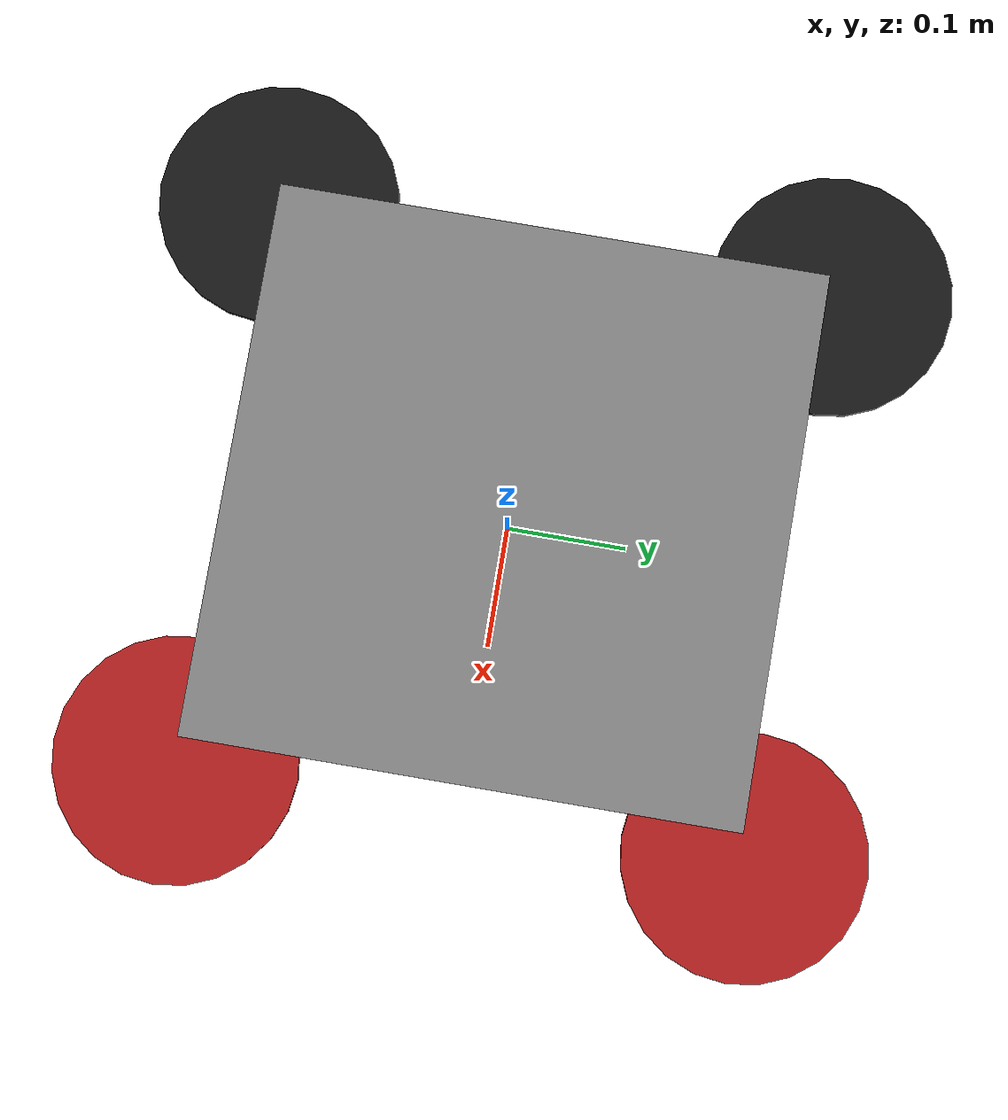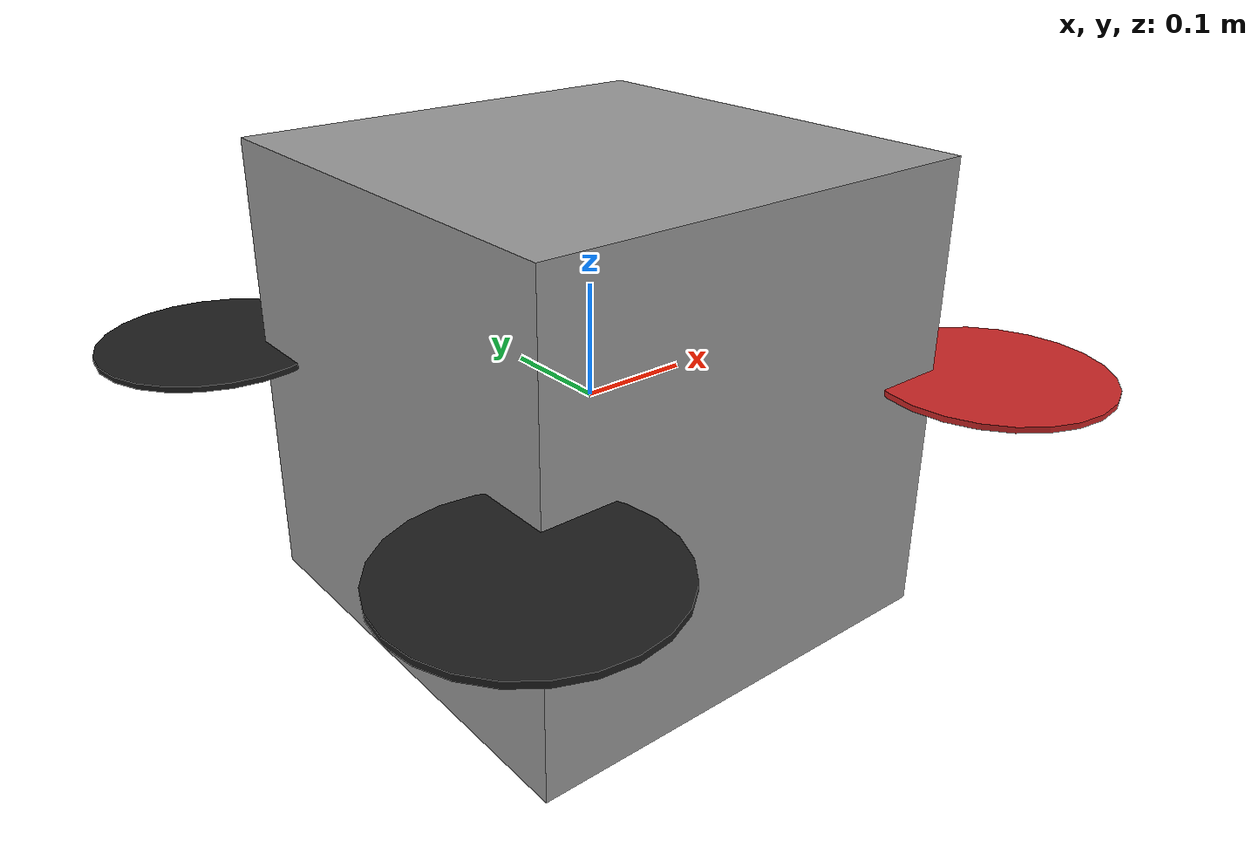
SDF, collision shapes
<?xml version="1.0"?>

<sdf version='1.7'>
  <model name='dji'>
  <static>false</static>

    <link name='base_link'>
      <pose>0 0 0 0 0 0</pose>
      <inertial>
        <pose>0 0 0 0 0 0</pose>
        <mass>1.5</mass>
        <inertia>
          <ixx>0.00162</ixx>
          <ixy>0</ixy>
          <ixz>0</ixz>
          <iyy>0.00162</iyy>
          <iyz>0</iyz>
          <izz>0.0010125</izz>
        </inertia>
      </inertial>
      <collision name='base_link_inertia_collision'>
        <pose>0 0 0.014 0 0 0</pose>
        <geometry>
          <box>
            <size>0.4 0.4 0.4</size>
          </box>
        </geometry>
      </collision>
      <visual name='base_link_inertia_visual'>
        <pose>0 0 0 1.5707 0 1.5707</pose>
        <geometry>
          <mesh>
            <scale>1 1 1</scale>
            <uri>model://dji/meshes//m100.dae</uri>
          </mesh>
        </geometry>
        <material>
            <script>
              <uri>file://media/materials/scripts/gazebo.material</uri>
              <name>Gazebo/Grey</name>
            </script>
            <ambient>0.5 0.5 0.5 0.9</ambient>
        </material>
      </visual>
      <sensor name="os1_sensor" type="gpu_lidar">
        <topic>dji/os1_cloud_node</topic>
        <pose>0 0 0.0944 0 0 0</pose>
        <update_rate>20</update_rate>
        <lidar>
          <scan>
            <horizontal>
              <samples>1024</samples>
              <resolution>1</resolution>
              <min_angle>-3.14159</min_angle>
              <max_angle>3.14159</max_angle>
            </horizontal>
            <vertical>
              <samples>64</samples>
              <resolution>1</resolution>
              <min_angle>-0.785398163397</min_angle>
              <max_angle>0.785398163397</max_angle>
            </vertical>
          </scan>
          <range>
            <min>0.1</min>
            <max>50</max>
            <resolution>0.003</resolution>
          </range>
          <noise>
              <type>gaussian</type>
              <mean>0</mean>
              <stddev>0.03</stddev>
          </noise>
        </lidar>
      </sensor>
      <visual name='base_link_os1'>
        <pose>0 0 0.06 0 -0 1.5708</pose>
        <geometry>
          <mesh>
            <scale>1 1 1</scale>
            <uri>meshes/os1_64.dae</uri>
          </mesh>
        </geometry>
      </visual>
    </link>

    <link name='imu_link'>
      <pose>0 0 0 0 0 0</pose>
      <inertial>
        <pose>0 0 0 0 0 0</pose>
        <mass>0.015</mass>
        <inertia>
          <ixx>1e-05</ixx>
          <ixy>0</ixy>
          <ixz>0</ixz>
          <iyy>1e-05</iyy>
          <iyz>0</iyz>
          <izz>1e-05</izz>
        </inertia>
      </inertial>
      <sensor name="imu_sensor" type="imu">
          <topic>dji/imu</topic>
          <always_on>1</always_on>
          <update_rate>250</update_rate>
              <imu>
                  <enable_orientation>0</enable_orientation>
                  <angular_velocity>
                      <x>
                          <noise type="gaussian">
                              <mean>0</mean>
                              <stddev>0.009</stddev>
                              <bias_mean>0.00075</bias_mean>
                              <bias_stddev>0.005</bias_stddev>
                              <dynamic_bias_stddev>0.00002</dynamic_bias_stddev>
                              <dynamic_bias_correlation_time>400.0</dynamic_bias_correlation_time>
                              <precision>0.00025</precision>
                          </noise>
                      </x>
                      <y>
                          <noise type="gaussian">
                              <mean>0</mean>
                              <stddev>0.009</stddev>
                              <bias_mean>0.00075</bias_mean>
                              <bias_stddev>0.005</bias_stddev>
                              <dynamic_bias_stddev>0.00002</dynamic_bias_stddev>
                              <dynamic_bias_correlation_time>400.0</dynamic_bias_correlation_time>
                              <precision>0.00025</precision>
                          </noise>
                      </y>
                      <z>
                          <noise type="gaussian">
                              <mean>0</mean>
                              <stddev>0.009</stddev>
                              <bias_mean>0.00075</bias_mean>
                              <bias_stddev>0.005</bias_stddev>
                              <dynamic_bias_stddev>0.00002</dynamic_bias_stddev>
                              <dynamic_bias_correlation_time>400.0</dynamic_bias_correlation_time>
                              <precision>0.00025</precision>
                          </noise>
                      </z>
                  </angular_velocity>
                  <linear_acceleration>
                      <x>
                          <noise type="gaussian">
                              <mean>0</mean>
                              <stddev>0.021</stddev>
                              <bias_mean>0.05</bias_mean>
                              <bias_stddev>0.0075</bias_stddev>
                              <dynamic_bias_stddev>0.000375</dynamic_bias_stddev>
                              <dynamic_bias_correlation_time>175.0</dynamic_bias_correlation_time>
                              <precision>0.005</precision>
                          </noise>
                      </x>
                      <y>
                          <noise type="gaussian">
                              <mean>0</mean>
                              <stddev>0.021</stddev>
                              <bias_mean>0.05</bias_mean>
                              <bias_stddev>0.0075</bias_stddev>
                              <dynamic_bias_stddev>0.000375</dynamic_bias_stddev>
                              <dynamic_bias_correlation_time>175.0</dynamic_bias_correlation_time>
                              <precision>0.005</precision>
                          </noise>
                      </y>
                      <z>
                          <noise type="gaussian">
                              <mean>0</mean>
                              <stddev>0.021</stddev>
                              <bias_mean>0.05</bias_mean>
                              <bias_stddev>0.0075</bias_stddev>
                              <dynamic_bias_stddev>0.000375</dynamic_bias_stddev>
                              <dynamic_bias_correlation_time>175.0</dynamic_bias_correlation_time>
                              <precision>0.005</precision>
                          </noise>
                      </z>
                  </linear_acceleration>
              </imu>
      </sensor>
    </link>

    <joint name='imu_joint' type='revolute'>
      <child>imu_link</child>
      <parent>base_link</parent>
      <axis>
        <xyz>1 0 0</xyz>
        <limit>
          <lower>0</lower>
          <upper>0</upper>
          <effort>0</effort>
          <velocity>0</velocity>
        </limit>
        <dynamics>
          <spring_reference>0</spring_reference>
          <spring_stiffness>0</spring_stiffness>
        </dynamics>
        <use_parent_model_frame>1</use_parent_model_frame>
      </axis>
    </joint>

    <link name='rotor_0'>
      <pose>0.232 -0.232 0.034 0 0 0</pose>
      <inertial>
        <pose>0 0 0 0 0 0</pose>
        <mass>0.005</mass>
        <inertia>
          <ixx>9.75e-07</ixx>
          <ixy>0</ixy>
          <ixz>0</ixz>
          <iyy>4.17041e-05</iyy>
          <iyz>0</iyz>
          <izz>4.26041e-05</izz>
        </inertia>
      </inertial>
      <collision name='rotor_0_collision'>
        <pose>0 0 0 0 0 0</pose>
        <geometry>
          <cylinder>
            <length>0.005</length>
            <radius>0.1</radius>
          </cylinder>
        </geometry>
        <surface>
          <contact>
            <ode/>
          </contact>
          <friction>
            <ode/>
          </friction>
        </surface>
      </collision>
      <visual name='rotor_0_visual'>
        <pose>0 0 0 0 0 0</pose>
        <geometry>
          <mesh>
            <scale>0.1 0.1 0.1</scale>
            <uri>model://dji/meshes/propeller_ccw.dae</uri>
          </mesh>
        </geometry>
        <material>
          <script>
            <name>Gazebo/Red</name>
            <uri>file://media/materials/scripts/gazebo.material</uri>
          </script>
        </material>
      </visual>
      <gravity>1</gravity>
      <velocity_decay/>
    </link>

    <joint name='rotor_0_joint' type='revolute'>
      <child>rotor_0</child>
      <parent>base_link</parent>
      <axis>
        <xyz>0 0 1</xyz>
        <limit>
          <lower>-1e+16</lower>
          <upper>1e+16</upper>
        </limit>
        <dynamics>
          <spring_reference>0</spring_reference>
          <spring_stiffness>0</spring_stiffness>
        </dynamics>
        <use_parent_model_frame>1</use_parent_model_frame>
      </axis>
    </joint>

    <link name='rotor_1'>
      <pose>-0.232 0.232 0.034 0 0 0</pose>
      <inertial>
        <pose>0 0 0 0 0 0</pose>
        <mass>0.005</mass>
        <inertia>
          <ixx>9.75e-07</ixx>
          <ixy>0</ixy>
          <ixz>0</ixz>
          <iyy>4.17041e-05</iyy>
          <iyz>0</iyz>
          <izz>4.26041e-05</izz>
        </inertia>
      </inertial>
      <collision name='rotor_1_collision'>
        <pose>0 0 0 0 0 0</pose>
        <geometry>
          <cylinder>
            <length>0.005</length>
            <radius>0.1</radius>
          </cylinder>
        </geometry>
        <surface>
          <contact>
            <ode/>
          </contact>
          <friction>
            <ode/>
          </friction>
        </surface>
      </collision>
      <visual name='rotor_1_visual'>
        <pose>0 0 0 0 0 0</pose>
        <geometry>
          <mesh>
            <scale>0.1 0.1 0.1</scale>
            <uri>model://dji/meshes/propeller_ccw.dae</uri>
          </mesh>
        </geometry>
        <material>
          <script>
            <name>Gazebo/Black</name>
            <uri>file://media/materials/scripts/gazebo.material</uri>
          </script>
        </material>
      </visual>
      <gravity>1</gravity>
      <velocity_decay/>
    </link>
    <joint name='rotor_1_joint' type='revolute'>
      <child>rotor_1</child>
      <parent>base_link</parent>
      <axis>
        <xyz>0 0 1</xyz>
        <limit>
          <lower>-1e+16</lower>
          <upper>1e+16</upper>
        </limit>
        <dynamics>
          <spring_reference>0</spring_reference>
          <spring_stiffness>0</spring_stiffness>
        </dynamics>
        <use_parent_model_frame>1</use_parent_model_frame>
      </axis>
    </joint>

    <link name='rotor_2'>
      <pose>0.232 0.232 0.034 0 0 0</pose>
      <inertial>
        <pose>0 0 0 0 0 0</pose>
        <mass>0.005</mass>
        <inertia>
          <ixx>9.75e-07</ixx>
          <ixy>0</ixy>
          <ixz>0</ixz>
          <iyy>4.17041e-05</iyy>
          <iyz>0</iyz>
          <izz>4.26041e-05</izz>
        </inertia>
      </inertial>
      <collision name='rotor_2_collision'>
        <pose>0 0 0 0 0 0</pose>
        <geometry>
          <cylinder>
            <length>0.005</length>
            <radius>0.1</radius>
          </cylinder>
        </geometry>
        <surface>
          <contact>
            <ode/>
          </contact>
          <friction>
            <ode/>
          </friction>
        </surface>
      </collision>
      <visual name='rotor_2_visual'>
        <pose>0 0 0 0 0 0</pose>
        <geometry>
          <mesh>
            <scale>0.1 0.1 0.1</scale>
            <uri>model://dji/meshes/propeller_cw.dae</uri>
          </mesh>
        </geometry>
        <material>
          <script>
            <name>Gazebo/Red</name>
            <uri>file://media/materials/scripts/gazebo.material</uri>
          </script>
        </material>
      </visual>
      <gravity>1</gravity>
      <velocity_decay/>
    </link>
    <joint name='rotor_2_joint' type='revolute'>
      <child>rotor_2</child>
      <parent>base_link</parent>
      <axis>
        <xyz>0 0 1</xyz>
        <limit>
          <lower>-1e+16</lower>
          <upper>1e+16</upper>
        </limit>
        <dynamics>
          <spring_reference>0</spring_reference>
          <spring_stiffness>0</spring_stiffness>
        </dynamics>
        <use_parent_model_frame>1</use_parent_model_frame>
      </axis>
    </joint>

    <link name='rotor_3'>
      <pose>-0.232 -0.232 0.034 0 0 0</pose>
      <inertial>
        <pose>0 0 0 0 0 0</pose>
        <mass>0.005</mass>
        <inertia>
          <ixx>9.75e-07</ixx>
          <ixy>0</ixy>
          <ixz>0</ixz>
          <iyy>4.17041e-05</iyy>
          <iyz>0</iyz>
          <izz>4.26041e-05</izz>
        </inertia>
      </inertial>
      <collision name='rotor_3_collision'>
        <pose>0 0 0 0 0 0</pose>
        <geometry>
          <cylinder>
            <length>0.005</length>
            <radius>0.1</radius>
          </cylinder>
        </geometry>
        <surface>
          <contact>
            <ode/>
          </contact>
          <friction>
            <ode/>
          </friction>
        </surface>
      </collision>
      <visual name='rotor_3_visual'>
        <pose>0 0 0 0 0 0</pose>
        <geometry>
          <mesh>
            <scale>0.1 0.1 0.1</scale>
            <uri>model://dji/meshes/propeller_cw.dae</uri>
          </mesh>
        </geometry>
        <material>
          <script>
            <name>Gazebo/Black</name>
            <uri>file://media/materials/scripts/gazebo.material</uri>
          </script>
        </material>
      </visual>
      <gravity>1</gravity>
      <velocity_decay/>
    </link>
    <joint name='rotor_3_joint' type='revolute'>
      <child>rotor_3</child>
      <parent>base_link</parent>
      <axis>
        <xyz>0 0 1</xyz>
        <limit>
          <lower>-1e+16</lower>
          <upper>1e+16</upper>
        </limit>
        <dynamics>
          <spring_reference>0</spring_reference>
          <spring_stiffness>0</spring_stiffness>
        </dynamics>
        <use_parent_model_frame>1</use_parent_model_frame>
      </axis>
    </joint>

    <!-- Plugin to control differential locomotion-->
  <plugin
        filename="ignition-gazebo-multicopter-motor-model-system"
        name="ignition::gazebo::systems::MulticopterMotorModel">
        <robotNamespace>dji</robotNamespace>
        <jointName>rotor_0_joint</jointName>
        <linkName>rotor_0</linkName>
        <turningDirection>ccw</turningDirection>
        <timeConstantUp>0.0125</timeConstantUp>
        <timeConstantDown>0.025</timeConstantDown>
        <maxRotVelocity>20000.0</maxRotVelocity>
        <motorConstant>8.54858e-06</motorConstant>
        <momentConstant>0.016</momentConstant>
        <commandSubTopic>gazebo/command/motor_speed</commandSubTopic>
        <motorNumber>0</motorNumber>
        <rotorDragCoefficient>8.06428e-05</rotorDragCoefficient>
        <rollingMomentCoefficient>1e-06</rollingMomentCoefficient>
        <motorSpeedPubTopic>motor_speed/0</motorSpeedPubTopic>
        <rotorVelocitySlowdownSim>1</rotorVelocitySlowdownSim>
        <motorType>velocity</motorType>
      </plugin>
      <plugin
        filename="ignition-gazebo-multicopter-motor-model-system"
        name="ignition::gazebo::systems::MulticopterMotorModel">
        <robotNamespace>dji</robotNamespace>
        <jointName>rotor_1_joint</jointName>
        <linkName>rotor_1</linkName>
        <turningDirection>ccw</turningDirection>
        <timeConstantUp>0.0125</timeConstantUp>
        <timeConstantDown>0.025</timeConstantDown>
        <maxRotVelocity>20000.0</maxRotVelocity>
        <motorConstant>8.54858e-06</motorConstant>
        <momentConstant>0.016</momentConstant>
        <commandSubTopic>gazebo/command/motor_speed</commandSubTopic>
        <motorNumber>1</motorNumber>
        <rotorDragCoefficient>8.06428e-05</rotorDragCoefficient>
        <rollingMomentCoefficient>1e-06</rollingMomentCoefficient>
        <motorSpeedPubTopic>motor_speed/1</motorSpeedPubTopic>
        <rotorVelocitySlowdownSim>1</rotorVelocitySlowdownSim>
        <motorType>velocity</motorType>
      </plugin>
      <plugin
        filename="ignition-gazebo-multicopter-motor-model-system"
        name="ignition::gazebo::systems::MulticopterMotorModel">
        <robotNamespace>dji</robotNamespace>
        <jointName>rotor_2_joint</jointName>
        <linkName>rotor_2</linkName>
        <turningDirection>cw</turningDirection>
        <timeConstantUp>0.0125</timeConstantUp>
        <timeConstantDown>0.025</timeConstantDown>
        <maxRotVelocity>20000.0</maxRotVelocity>
        <motorConstant>8.54858e-06</motorConstant>
        <momentConstant>0.016</momentConstant>
        <commandSubTopic>gazebo/command/motor_speed</commandSubTopic>
        <motorNumber>2</motorNumber>
        <rotorDragCoefficient>8.06428e-05</rotorDragCoefficient>
        <rollingMomentCoefficient>1e-06</rollingMomentCoefficient>
        <motorSpeedPubTopic>motor_speed/2</motorSpeedPubTopic>
        <rotorVelocitySlowdownSim>1</rotorVelocitySlowdownSim>
        <motorType>velocity</motorType>
      </plugin>
      <plugin
        filename="ignition-gazebo-multicopter-motor-model-system"
        name="ignition::gazebo::systems::MulticopterMotorModel">
        <robotNamespace>dji</robotNamespace>
        <jointName>rotor_3_joint</jointName>
        <linkName>rotor_3</linkName>
        <turningDirection>cw</turningDirection>
        <timeConstantUp>0.0125</timeConstantUp>
        <timeConstantDown>0.025</timeConstantDown>
        <maxRotVelocity>20000.0</maxRotVelocity>
        <motorConstant>8.54858e-06</motorConstant>
        <momentConstant>0.016</momentConstant>
        <commandSubTopic>gazebo/command/motor_speed</commandSubTopic>
        <motorNumber>3</motorNumber>
        <rotorDragCoefficient>8.06428e-05</rotorDragCoefficient>
        <rollingMomentCoefficient>1e-06</rollingMomentCoefficient>
        <motorSpeedPubTopic>motor_speed/3</motorSpeedPubTopic>
        <rotorVelocitySlowdownSim>1</rotorVelocitySlowdownSim>
        <motorType>velocity</motorType>
      </plugin>

      <plugin
        filename="ignition-gazebo-odometry-publisher-system"
        name="ignition::gazebo::systems::OdometryPublisher">
        <dimensions>3</dimensions>
      </plugin>

  </model>
</sdf>
